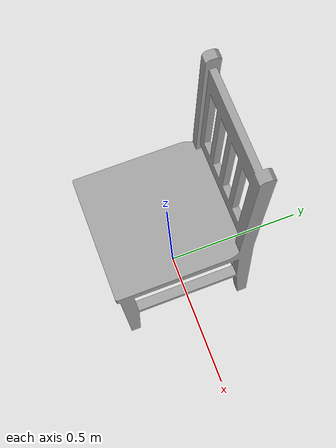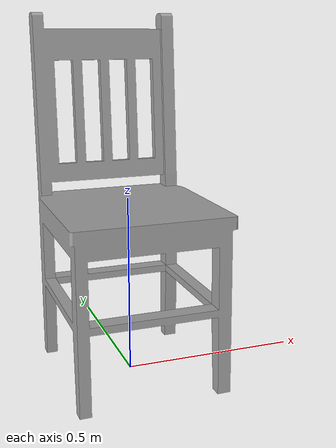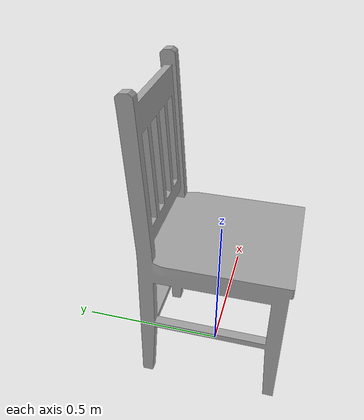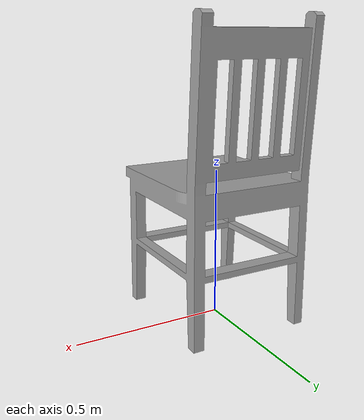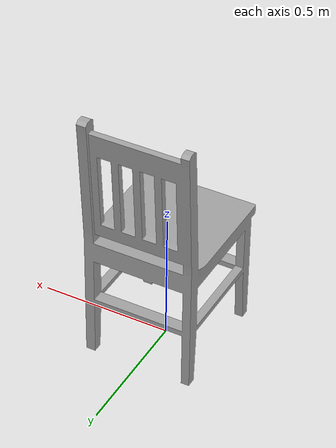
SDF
<?xml version="1.0" ?>
<sdf version="1.5">
  <model name='chair2'>
    <pose>0 0 0 0 0 0</pose>
    <static>1</static>
    <link name='body'>
      <collision name="chair2-coll">
        <pose>0 0 0 0 0 0</pose>
        <geometry>
          <mesh>
            <uri>model://chair2/meshes/chair2.dae</uri>
          </mesh>
        </geometry>
      </collision>
      <visual name='chair2'>
        <cast_shadows>1</cast_shadows>
        <geometry>
          <mesh>
            <uri>model://chair2/meshes/chair2.dae</uri>
          </mesh>
        </geometry>
      </visual>
      <velocity_decay>
        <linear>0</linear>
        <angular>0</angular>
      </velocity_decay>
      <self_collide>0</self_collide>
      <kinematic>0</kinematic>
      <gravity>1</gravity>
    </link>
  </model>

</sdf>
